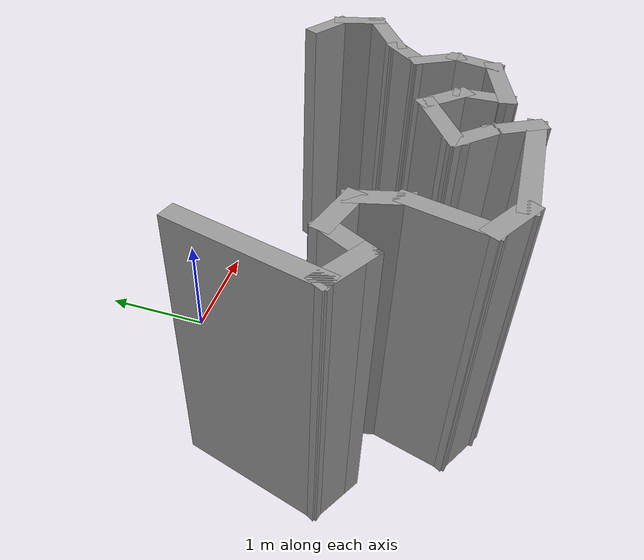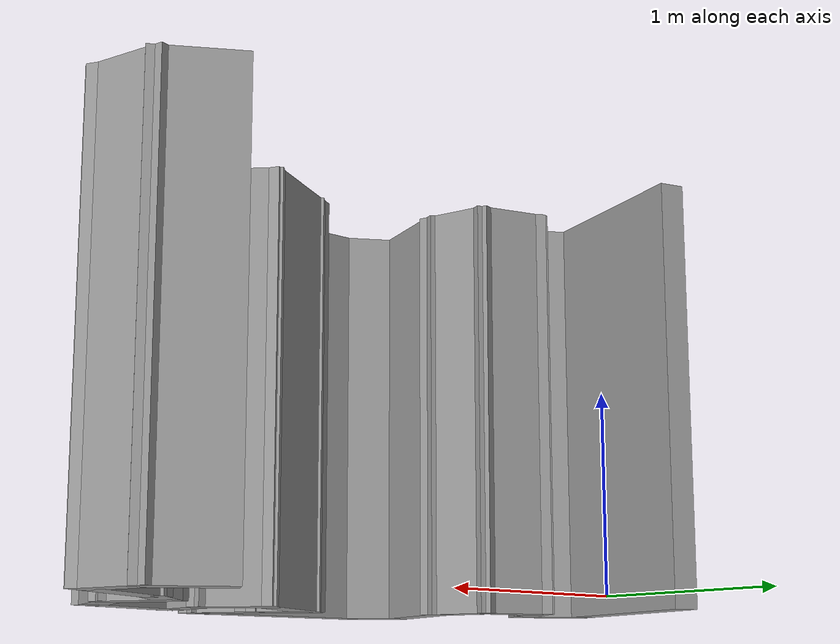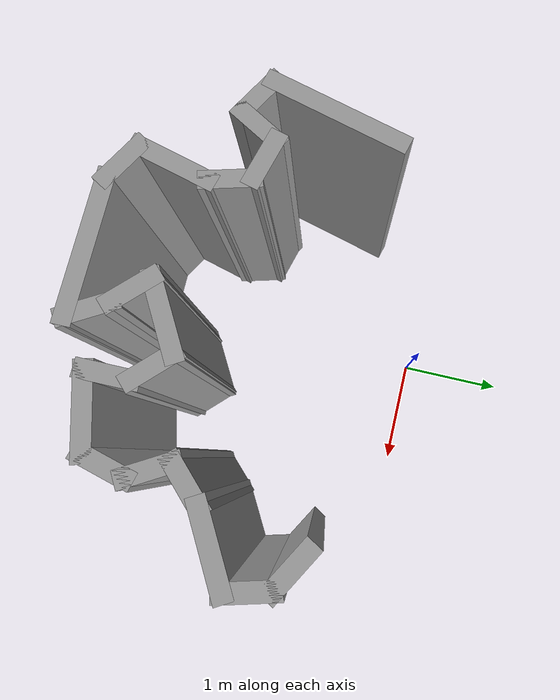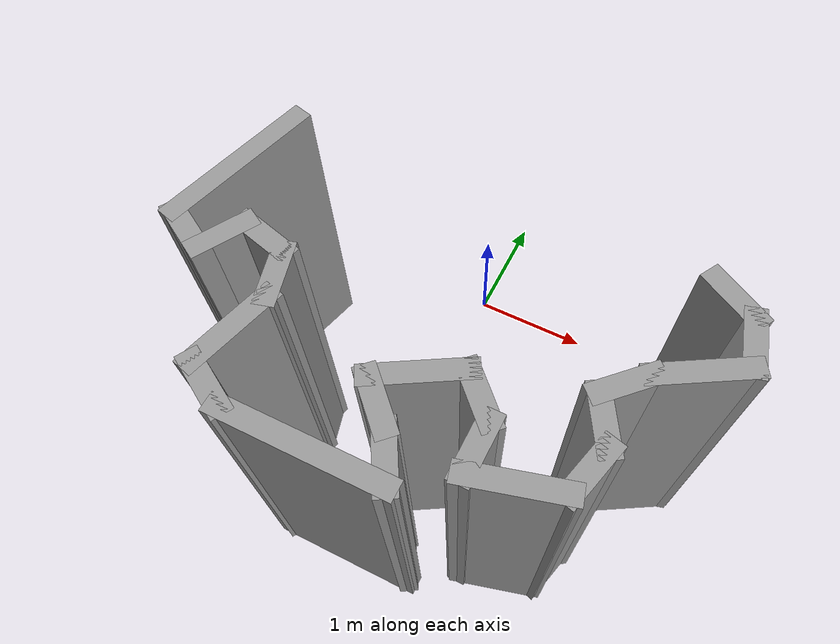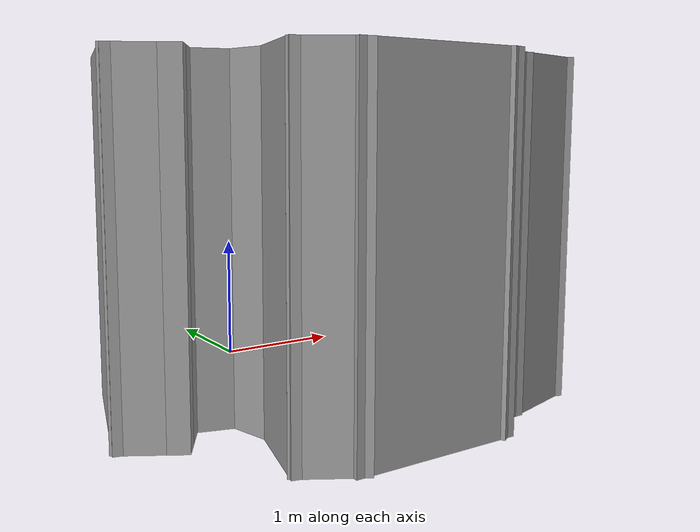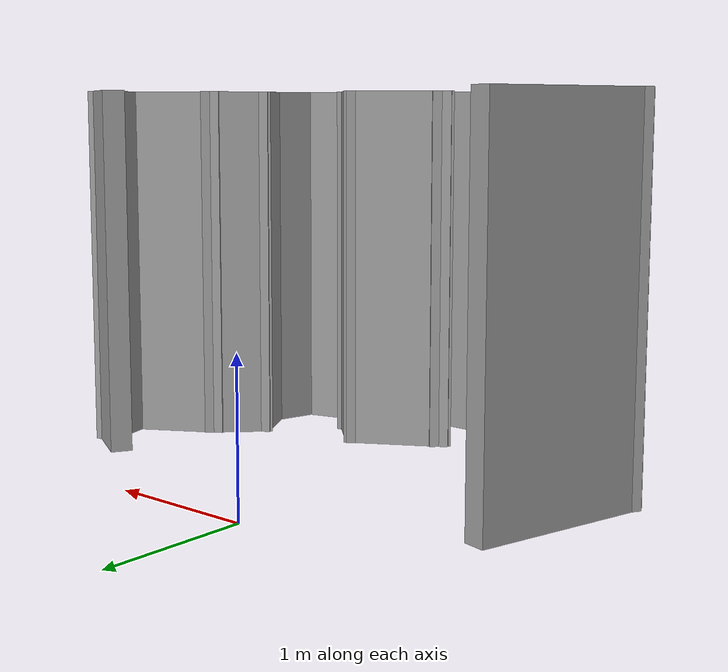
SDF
<?xml version='1.0'?>
<sdf version='1.7'>
  <model name='gazebo_world_model'>
    <pose>0.316023 -1.42004 0 0 -0 0</pose>
    <link name='Wall_1'>
      <collision name='Wall_1_Collision'>
        <geometry>
          <box>
            <size>1.25 0.15 2.5</size>
          </box>
        </geometry>
        <pose>0 0 1.25 0 -0 0</pose>
      </collision>
      <visual name='Wall_1_Visual'>
        <pose>0 0 1.25 0 -0 0</pose>
        <geometry>
          <box>
            <size>1.25 0.15 2.5</size>
          </box>
        </geometry>
        <material>
          <script>
            <uri>file://media/materials/scripts/gazebo.material</uri>
            <name>Gazebo/Grey</name>
          </script>
          <ambient>1 1 1 1</ambient>
        </material>
        <meta>
          <layer>0</layer>
        </meta>
      </visual>
      <pose>-1.73837 0.26878 0 0 -0 -1.8326</pose>
    </link>
    <link name='Wall_10'>
      <collision name='Wall_10_Collision'>
        <geometry>
          <box>
            <size>0.5 0.15 2.5</size>
          </box>
        </geometry>
        <pose>0 0 1.25 0 -0 0</pose>
      </collision>
      <visual name='Wall_10_Visual'>
        <pose>0 0 1.25 0 -0 0</pose>
        <geometry>
          <box>
            <size>0.5 0.15 2.5</size>
          </box>
        </geometry>
        <material>
          <script>
            <uri>file://media/materials/scripts/gazebo.material</uri>
            <name>Gazebo/Grey</name>
          </script>
          <ambient>1 1 1 1</ambient>
        </material>
        <meta>
          <layer>0</layer>
        </meta>
      </visual>
      <pose>-0.02488 -0.890734 0 0 -0 2.35619</pose>
    </link>
    <link name='Wall_11'>
      <collision name='Wall_11_Collision'>
        <geometry>
          <box>
            <size>0.75 0.15 2.5</size>
          </box>
        </geometry>
        <pose>0 0 1.25 0 -0 0</pose>
      </collision>
      <visual name='Wall_11_Visual'>
        <pose>0 0 1.25 0 -0 0</pose>
        <geometry>
          <box>
            <size>0.75 0.15 2.5</size>
          </box>
        </geometry>
        <material>
          <script>
            <uri>file://media/materials/scripts/gazebo.material</uri>
            <name>Gazebo/Grey</name>
          </script>
          <ambient>1 1 1 1</ambient>
        </material>
        <meta>
          <layer>0</layer>
        </meta>
      </visual>
      <pose>0.111184 -0.616991 0 0 -0 0.523599</pose>
    </link>
    <link name='Wall_12'>
      <collision name='Wall_12_Collision'>
        <geometry>
          <box>
            <size>0.5 0.15 2.5</size>
          </box>
        </geometry>
        <pose>0 0 1.25 0 -0 0</pose>
      </collision>
      <visual name='Wall_12_Visual'>
        <pose>0 0 1.25 0 -0 0</pose>
        <geometry>
          <box>
            <size>0.5 0.15 2.5</size>
          </box>
        </geometry>
        <material>
          <script>
            <uri>file://media/materials/scripts/gazebo.material</uri>
            <name>Gazebo/Grey</name>
          </script>
          <ambient>1 1 1 1</ambient>
        </material>
        <meta>
          <layer>0</layer>
        </meta>
      </visual>
      <pose>0.494735 -0.590734 0 0 -0 -0.785398</pose>
    </link>
    <link name='Wall_13'>
      <collision name='Wall_13_Collision'>
        <geometry>
          <box>
            <size>0.5 0.15 2.5</size>
          </box>
        </geometry>
        <pose>0 0 1.25 0 -0 0</pose>
      </collision>
      <visual name='Wall_13_Visual'>
        <pose>0 0 1.25 0 -0 0</pose>
        <geometry>
          <box>
            <size>0.5 0.15 2.5</size>
          </box>
        </geometry>
        <material>
          <script>
            <uri>file://media/materials/scripts/gazebo.material</uri>
            <name>Gazebo/Grey</name>
          </script>
          <ambient>1 1 1 1</ambient>
        </material>
        <meta>
          <layer>0</layer>
        </meta>
      </visual>
      <pose>0.618479 -0.889478 0 0 -0 -1.5708</pose>
    </link>
    <link name='Wall_14'>
      <collision name='Wall_14_Collision'>
        <geometry>
          <box>
            <size>0.75 0.15 2.5</size>
          </box>
        </geometry>
        <pose>0 0 1.25 0 -0 0</pose>
      </collision>
      <visual name='Wall_14_Visual'>
        <pose>0 0 1.25 0 -0 0</pose>
        <geometry>
          <box>
            <size>0.75 0.15 2.5</size>
          </box>
        </geometry>
        <material>
          <script>
            <uri>file://media/materials/scripts/gazebo.material</uri>
            <name>Gazebo/Grey</name>
          </script>
          <ambient>1 1 1 1</ambient>
        </material>
        <meta>
          <layer>0</layer>
        </meta>
      </visual>
      <pose>0.908256 -0.986832 0 0 -0 0.261799</pose>
    </link>
    <link name='Wall_15'>
      <collision name='Wall_15_Collision'>
        <geometry>
          <box>
            <size>0.5 0.15 2.5</size>
          </box>
        </geometry>
        <pose>0 0 1.25 0 -0 0</pose>
      </collision>
      <visual name='Wall_15_Visual'>
        <pose>0 0 1.25 0 -0 0</pose>
        <geometry>
          <box>
            <size>0.5 0.15 2.5</size>
          </box>
        </geometry>
        <material>
          <script>
            <uri>file://media/materials/scripts/gazebo.material</uri>
            <name>Gazebo/Grey</name>
          </script>
          <ambient>1 1 1 1</ambient>
        </material>
        <meta>
          <layer>0</layer>
        </meta>
      </visual>
      <pose>1.24333 -0.74015 0 0 -0 1.309</pose>
    </link>
    <link name='Wall_16'>
      <collision name='Wall_16_Collision'>
        <geometry>
          <box>
            <size>0.5 0.15 2.5</size>
          </box>
        </geometry>
        <pose>0 0 1.25 0 -0 0</pose>
      </collision>
      <visual name='Wall_16_Visual'>
        <pose>0 0 1.25 0 -0 0</pose>
        <geometry>
          <box>
            <size>0.5 0.15 2.5</size>
          </box>
        </geometry>
        <material>
          <script>
            <uri>file://media/materials/scripts/gazebo.material</uri>
            <name>Gazebo/Grey</name>
          </script>
          <ambient>1 1 1 1</ambient>
        </material>
        <meta>
          <layer>0</layer>
        </meta>
      </visual>
      <pose>1.20112 -0.419558 0 0 -0 2.0944</pose>
    </link>
    <link name='Wall_17'>
      <collision name='Wall_17_Collision'>
        <geometry>
          <box>
            <size>0.5 0.15 2.5</size>
          </box>
        </geometry>
        <pose>0 0 1.25 0 -0 0</pose>
      </collision>
      <visual name='Wall_17_Visual'>
        <pose>0 0 1.25 0 -0 0</pose>
        <geometry>
          <box>
            <size>0.5 0.15 2.5</size>
          </box>
        </geometry>
        <material>
          <script>
            <uri>file://media/materials/scripts/gazebo.material</uri>
            <name>Gazebo/Grey</name>
          </script>
          <ambient>1 1 1 1</ambient>
        </material>
        <meta>
          <layer>0</layer>
        </meta>
      </visual>
      <pose>1.23737 -0.14426 0 0 -0 0.785398</pose>
    </link>
    <link name='Wall_18'>
      <collision name='Wall_18_Collision'>
        <geometry>
          <box>
            <size>0.75 0.15 2.5</size>
          </box>
        </geometry>
        <pose>0 0 1.25 0 -0 0</pose>
      </collision>
      <visual name='Wall_18_Visual'>
        <pose>0 0 1.25 0 -0 0</pose>
        <geometry>
          <box>
            <size>0.75 0.15 2.5</size>
          </box>
        </geometry>
        <material>
          <script>
            <uri>file://media/materials/scripts/gazebo.material</uri>
            <name>Gazebo/Grey</name>
          </script>
          <ambient>1 1 1 1</ambient>
        </material>
        <meta>
          <layer>0</layer>
        </meta>
      </visual>
      <pose>1.62092 0.129484 0 0 -0 0.523599</pose>
    </link>
    <link name='Wall_19'>
      <collision name='Wall_19_Collision'>
        <geometry>
          <box>
            <size>0.5 0.15 2.5</size>
          </box>
        </geometry>
        <pose>0 0 1.25 0 -0 0</pose>
      </collision>
      <visual name='Wall_19_Visual'>
        <pose>0 0 1.25 0 -0 0</pose>
        <geometry>
          <box>
            <size>0.5 0.15 2.5</size>
          </box>
        </geometry>
        <material>
          <script>
            <uri>file://media/materials/scripts/gazebo.material</uri>
            <name>Gazebo/Grey</name>
          </script>
          <ambient>1 1 1 1</ambient>
        </material>
        <meta>
          <layer>0</layer>
        </meta>
      </visual>
      <pose>1.83543 0.448521 0 0 -0 1.8326</pose>
    </link>
    <link name='Wall_2'>
      <collision name='Wall_2_Collision'>
        <geometry>
          <box>
            <size>0.5 0.15 2.5</size>
          </box>
        </geometry>
        <pose>0 0 1.25 0 -0 0</pose>
      </collision>
      <visual name='Wall_2_Visual'>
        <pose>0 0 1.25 0 -0 0</pose>
        <geometry>
          <box>
            <size>0.5 0.15 2.5</size>
          </box>
        </geometry>
        <material>
          <script>
            <uri>file://media/materials/scripts/gazebo.material</uri>
            <name>Gazebo/Grey</name>
          </script>
          <ambient>1 1 1 1</ambient>
        </material>
        <meta>
          <layer>0</layer>
        </meta>
      </visual>
      <pose>-1.72917 -0.34998 0 0 -0 -0.523599</pose>
    </link>
    <link name='Wall_20'>
      <collision name='Wall_20_Collision'>
        <geometry>
          <box>
            <size>0.5 0.15 2.5</size>
          </box>
        </geometry>
        <pose>0 0 1.25 0 -0 0</pose>
      </collision>
      <visual name='Wall_20_Visual'>
        <pose>0 0 1.25 0 -0 0</pose>
        <geometry>
          <box>
            <size>0.5 0.15 2.5</size>
          </box>
        </geometry>
        <material>
          <script>
            <uri>file://media/materials/scripts/gazebo.material</uri>
            <name>Gazebo/Grey</name>
          </script>
          <ambient>1 1 1 1</ambient>
        </material>
        <meta>
          <layer>0</layer>
        </meta>
      </visual>
      <pose>1.63858 0.705058 0 0 -0 2.61799</pose>
    </link>
    <link name='Wall_3'>
      <collision name='Wall_3_Collision'>
        <geometry>
          <box>
            <size>0.5 0.15 2.5</size>
          </box>
        </geometry>
        <pose>0 0 1.25 0 -0 0</pose>
      </collision>
      <visual name='Wall_3_Visual'>
        <pose>0 0 1.25 0 -0 0</pose>
        <geometry>
          <box>
            <size>0.5 0.15 2.5</size>
          </box>
        </geometry>
        <material>
          <script>
            <uri>file://media/materials/scripts/gazebo.material</uri>
            <name>Gazebo/Grey</name>
          </script>
          <ambient>1 1 1 1</ambient>
        </material>
        <meta>
          <layer>0</layer>
        </meta>
      </visual>
      <pose>-1.49012 -0.285925 0 0 -0 1.0472</pose>
    </link>
    <link name='Wall_4'>
      <collision name='Wall_4_Collision'>
        <geometry>
          <box>
            <size>0.5 0.15 2.5</size>
          </box>
        </geometry>
        <pose>0 0 1.25 0 -0 0</pose>
      </collision>
      <visual name='Wall_4_Visual'>
        <pose>0 0 1.25 0 -0 0</pose>
        <geometry>
          <box>
            <size>0.5 0.15 2.5</size>
          </box>
        </geometry>
        <material>
          <script>
            <uri>file://media/materials/scripts/gazebo.material</uri>
            <name>Gazebo/Grey</name>
          </script>
          <ambient>1 1 1 1</ambient>
        </material>
        <meta>
          <layer>0</layer>
        </meta>
      </visual>
      <pose>-1.23358 -0.179664 0 0 -0 -0.261799</pose>
    </link>
    <link name='Wall_5'>
      <collision name='Wall_5_Collision'>
        <geometry>
          <box>
            <size>0.5 0.15 2.5</size>
          </box>
        </geometry>
        <pose>0 0 1.25 0 -0 0</pose>
      </collision>
      <visual name='Wall_5_Visual'>
        <pose>0 0 1.25 0 -0 0</pose>
        <geometry>
          <box>
            <size>0.5 0.15 2.5</size>
          </box>
        </geometry>
        <material>
          <script>
            <uri>file://media/materials/scripts/gazebo.material</uri>
            <name>Gazebo/Grey</name>
          </script>
          <ambient>1 1 1 1</ambient>
        </material>
        <meta>
          <layer>0</layer>
        </meta>
      </visual>
      <pose>-1.01925 -0.393994 0 0 -0 -1.309</pose>
    </link>
    <link name='Wall_6'>
      <collision name='Wall_6_Collision'>
        <geometry>
          <box>
            <size>0.75 0.15 2.5</size>
          </box>
        </geometry>
        <pose>0 0 1.25 0 -0 0</pose>
      </collision>
      <visual name='Wall_6_Visual'>
        <pose>0 0 1.25 0 -0 0</pose>
        <geometry>
          <box>
            <size>0.75 0.15 2.5</size>
          </box>
        </geometry>
        <material>
          <script>
            <uri>file://media/materials/scripts/gazebo.material</uri>
            <name>Gazebo/Grey</name>
          </script>
          <ambient>1 1 1 1</ambient>
        </material>
        <meta>
          <layer>0</layer>
        </meta>
      </visual>
      <pose>-1.0516 -0.852809 0 0 -0 -1.8326</pose>
    </link>
    <link name='Wall_7'>
      <collision name='Wall_7_Collision'>
        <geometry>
          <box>
            <size>0.5 0.15 2.5</size>
          </box>
        </geometry>
        <pose>0 0 1.25 0 -0 0</pose>
      </collision>
      <visual name='Wall_7_Visual'>
        <pose>0 0 1.25 0 -0 0</pose>
        <geometry>
          <box>
            <size>0.5 0.15 2.5</size>
          </box>
        </geometry>
        <material>
          <script>
            <uri>file://media/materials/scripts/gazebo.material</uri>
            <name>Gazebo/Grey</name>
          </script>
          <ambient>1 1 1 1</ambient>
        </material>
        <meta>
          <layer>0</layer>
        </meta>
      </visual>
      <pose>-0.977691 -1.23009 0 0 -0 -0.523599</pose>
    </link>
    <link name='Wall_8'>
      <collision name='Wall_8_Collision'>
        <geometry>
          <box>
            <size>1.25 0.15 2.5</size>
          </box>
        </geometry>
        <pose>0 0 1.25 0 -0 0</pose>
      </collision>
      <visual name='Wall_8_Visual'>
        <pose>0 0 1.25 0 -0 0</pose>
        <geometry>
          <box>
            <size>1.25 0.15 2.5</size>
          </box>
        </geometry>
        <material>
          <script>
            <uri>file://media/materials/scripts/gazebo.material</uri>
            <name>Gazebo/Grey</name>
          </script>
          <ambient>1 1 1 1</ambient>
        </material>
        <meta>
          <layer>0</layer>
        </meta>
      </visual>
      <pose>-0.276137 -1.31759 0 0 -0 0</pose>
    </link>
    <link name='Wall_9'>
      <collision name='Wall_9_Collision'>
        <geometry>
          <box>
            <size>0.5 0.15 2.5</size>
          </box>
        </geometry>
        <pose>0 0 1.25 0 -0 0</pose>
      </collision>
      <visual name='Wall_9_Visual'>
        <pose>0 0 1.25 0 -0 0</pose>
        <geometry>
          <box>
            <size>0.5 0.15 2.5</size>
          </box>
        </geometry>
        <material>
          <script>
            <uri>file://media/materials/scripts/gazebo.material</uri>
            <name>Gazebo/Grey</name>
          </script>
          <ambient>1 1 1 1</ambient>
        </material>
        <meta>
          <layer>0</layer>
        </meta>
      </visual>
      <pose>0.186363 -1.16603 0 0 -0 2.0944</pose>
    </link>
    <static>1</static>
  </model>
</sdf>
